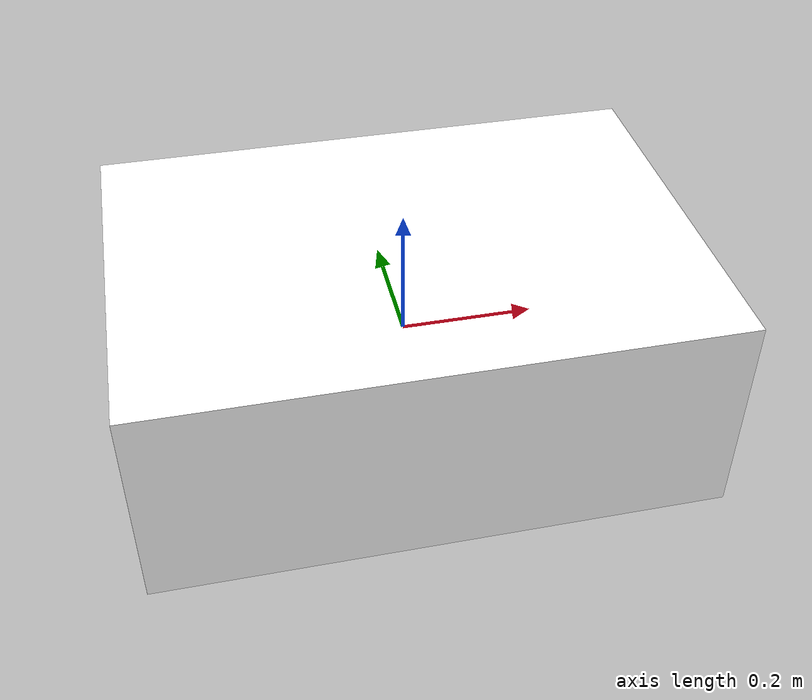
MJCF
<mujoco>
  <compiler angle="radian" assetdir="assets" autolimits="true"/>

  <asset>

    <!-- Textures -->
    <texture type="2d" colorspace="sRGB" name="carton_03_uv" file="carton_03_uv.png"/>

    <!-- Materials -->
    <material name="MI_carton_03" rgba="1 1 1 1" reflectance="0.5" metallic="0.0" roughness="0.5">
      <layer texture="carton_03_uv" role="rgb"/>
    </material>

    <!-- Visual meshes -->
    <mesh class="visual" name="V_carton_03" file="V_carton_03.obj"/>

  </asset>

  <default>
      <default class="visual">
        <geom type="mesh" contype="0" conaffinity="0" group="2" density="0"/>
      </default>
  </default>

  <worldbody>
    <body name="B_carton_03" pos="0.0 0.0 0.0" quat="1.0 0.0 0.0 0.0">
      <geom class="visual" mesh="V_carton_03" pos="0.0 0.0 0.0" quat="1.0 0.0 0.0 0.0" material="MI_carton_03"/>
    </body>
  </worldbody>

</mujoco>
